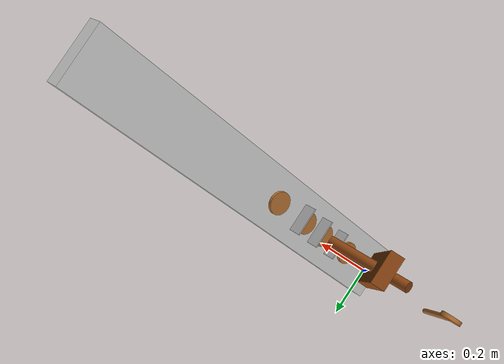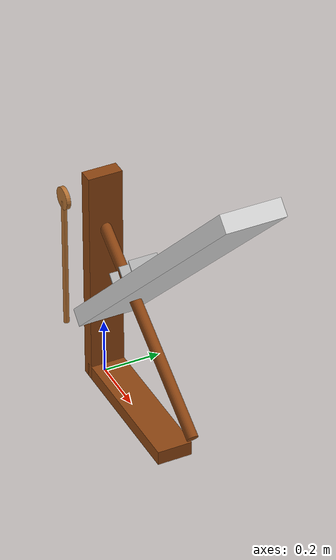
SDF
<?xml version="1.0" ?>
<sdf version="1.9">
  <model name="wind_turbine_blade">
    <static>true</static>

    <!-- ===== SUPPORT STAND ===== -->
    <!-- Vertical back support -->
    <link name="stand_vertical">
      <pose>0 0 0.4 0 0 0</pose>
      <collision name="col"><geometry><box><size>0.05 0.12 0.8</size></box></geometry></collision>
      <visual name="vis">
        <geometry><box><size>0.05 0.12 0.8</size></box></geometry>
        <material><ambient>0.55 0.27 0.07 1</ambient><diffuse>0.55 0.27 0.07 1</diffuse></material>
      </visual>
    </link>
    <!-- Horizontal base -->
    <link name="stand_base">
      <pose>0.2615 0 0.025 0 0 0</pose>
      <collision name="col"><geometry><box><size>0.523 0.12 0.05</size></box></geometry></collision>
      <visual name="vis">
        <geometry><box><size>0.523 0.12 0.05</size></box></geometry>
        <material><ambient>0.55 0.27 0.07 1</ambient><diffuse>0.55 0.27 0.07 1</diffuse></material>
      </visual>
    </link>
    <!-- Diagonal brace (hypotenuse): from (0.025, z=0.8) to (0.523, z=0.05), length=sqrt(0.498^2+0.75^2)=0.898m, angle=atan(0.75/0.498)=56.4 deg -->
    <link name="stand_brace">
      <pose>0.274 0 0.425 0 -0.9827 0</pose>
      <collision name="col"><geometry><cylinder><radius>0.02</radius><length>0.898</length></cylinder></geometry></collision>
      <visual name="vis">
        <geometry><cylinder><radius>0.02</radius><length>0.898</length></cylinder></geometry>
        <material><ambient>0.55 0.27 0.07 1</ambient><diffuse>0.55 0.27 0.07 1</diffuse></material>
      </visual>
    </link>

    <!-- ===== BLADE ===== -->
    <!-- Box 1.45m x 0.2m x 0.06m, pitched -45 deg. Center at (0.513, 0, 0.763). -->
    <link name="blade">
      <pose>0.513 0 0.763 0 -0.7854 0</pose>
      <collision name="col"><geometry><box><size>1.45 0.2 0.06</size></box></geometry></collision>
      <visual name="vis">
        <geometry><box><size>1.45 0.2 0.06</size></box></geometry>
        <material><ambient>0.85 0.85 0.85 1</ambient><diffuse>0.85 0.85 0.85 1</diffuse></material>
      </visual>
    </link>

    <!-- ===== ARUCO MARKERS ON BLADE (visual panels) ===== -->
    <!-- Three ArUco markers (100mm square) along blade top face.
         Placed at same rotation as copper discs (pitch=-0.7854). -->
    <link name="aruco_id4">
      <pose>0.185 0 0.476 0 -0.7854 0</pose>
      <visual name="vis">
        <geometry><box><size>0.005 0.1 0.1</size></box></geometry>
        <material>
          <pbr><metal>
            <albedo_map>materials/textures/aruco_markers/id_4_wind.png</albedo_map>
          </metal></pbr>
        </material>
      </visual>
    </link>
    <link name="aruco_id5">
      <pose>0.255 0 0.547 0 -0.7854 0</pose>
      <visual name="vis">
        <geometry><box><size>0.005 0.1 0.1</size></box></geometry>
        <material>
          <pbr><metal>
            <albedo_map>materials/textures/aruco_markers/id_5_wind.png</albedo_map>
          </metal></pbr>
        </material>
      </visual>
    </link>
    <link name="aruco_id6">
      <pose>0.326 0 0.618 0 -0.7854 0</pose>
      <visual name="vis">
        <geometry><box><size>0.005 0.1 0.1</size></box></geometry>
        <material>
          <pbr><metal>
            <albedo_map>materials/textures/aruco_markers/id_6_wind.png</albedo_map>
          </metal></pbr>
        </material>
      </visual>
    </link>

    <!-- ===== COPPER DISC TARGETS ===== -->
    <!-- Cylinders flat on blade face: radius=0.04m, length=0.02m, same pitch as blade normal. -->
    <link name="copper_1">
      <pose>0.120 0 0.413 0 -0.7854 0</pose>
      <collision name="col"><geometry><cylinder><radius>0.04</radius><length>0.02</length></cylinder></geometry></collision>
      <visual name="vis">
        <geometry><cylinder><radius>0.04</radius><length>0.02</length></cylinder></geometry>
        <material><ambient>0.72 0.45 0.2 1</ambient><diffuse>0.72 0.45 0.2 1</diffuse></material>
      </visual>
    </link>
    <link name="copper_2">
      <pose>0.227 0 0.519 0 -0.7854 0</pose>
      <collision name="col"><geometry><cylinder><radius>0.04</radius><length>0.02</length></cylinder></geometry></collision>
      <visual name="vis">
        <geometry><cylinder><radius>0.04</radius><length>0.02</length></cylinder></geometry>
        <material><ambient>0.72 0.45 0.2 1</ambient><diffuse>0.72 0.45 0.2 1</diffuse></material>
      </visual>
    </link>
    <link name="copper_3">
      <pose>0.297 0 0.590 0 -0.7854 0</pose>
      <collision name="col"><geometry><cylinder><radius>0.04</radius><length>0.02</length></cylinder></geometry></collision>
      <visual name="vis">
        <geometry><cylinder><radius>0.04</radius><length>0.02</length></cylinder></geometry>
        <material><ambient>0.72 0.45 0.2 1</ambient><diffuse>0.72 0.45 0.2 1</diffuse></material>
      </visual>
    </link>
    <link name="copper_4">
      <pose>0.403 0 0.696 0 -0.7854 0</pose>
      <collision name="col"><geometry><cylinder><radius>0.04</radius><length>0.02</length></cylinder></geometry></collision>
      <visual name="vis">
        <geometry><cylinder><radius>0.04</radius><length>0.02</length></cylinder></geometry>
        <material><ambient>0.72 0.45 0.2 1</ambient><diffuse>0.72 0.45 0.2 1</diffuse></material>
      </visual>
    </link>

    <!-- ===== COPPER RING PICKUP STAND ===== -->
    <!-- Post: 500mm tall at x=-0.3 (away from blade structure). -->
    <link name="ring_post">
      <pose>-0.3 0 0.25 0 0 0</pose>
      <collision name="col"><geometry><cylinder><radius>0.01</radius><length>0.5</length></cylinder></geometry></collision>
      <visual name="vis">
        <geometry><cylinder><radius>0.01</radius><length>0.5</length></cylinder></geometry>
        <material><ambient>0.72 0.45 0.2 1</ambient><diffuse>0.72 0.45 0.2 1</diffuse></material>
      </visual>
    </link>
    <!-- Copper ring (torus approximated as thin cylinder at top of post). -->
    <link name="ring">
      <pose>-0.3 0 0.51 1.5708 0 0</pose>
      <collision name="col"><geometry><cylinder><radius>0.04</radius><length>0.015</length></cylinder></geometry></collision>
      <visual name="vis">
        <geometry><cylinder><radius>0.04</radius><length>0.015</length></cylinder></geometry>
        <material><ambient>0.72 0.45 0.2 1</ambient><diffuse>0.72 0.45 0.2 1</diffuse></material>
      </visual>
    </link>

  </model>
</sdf>
